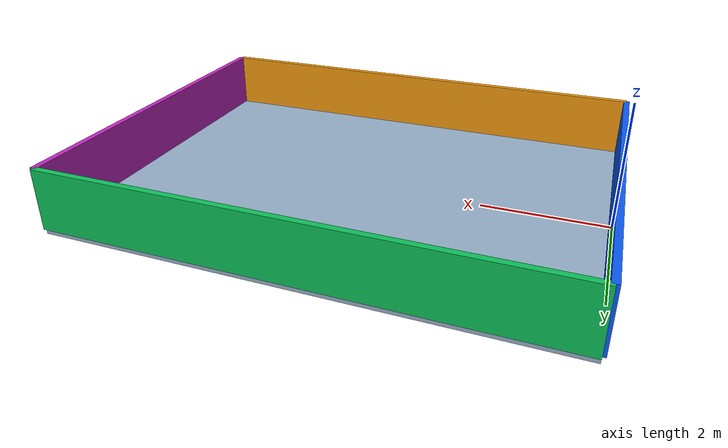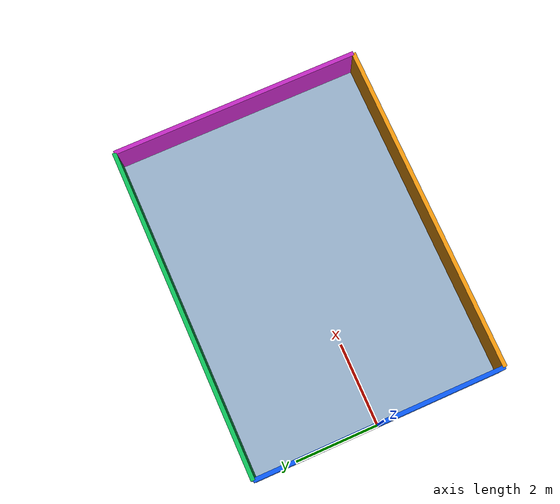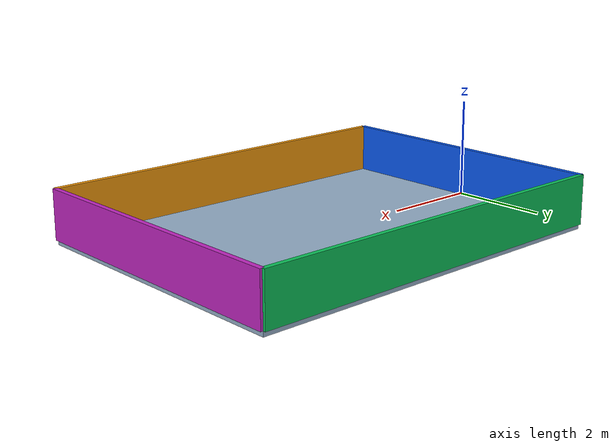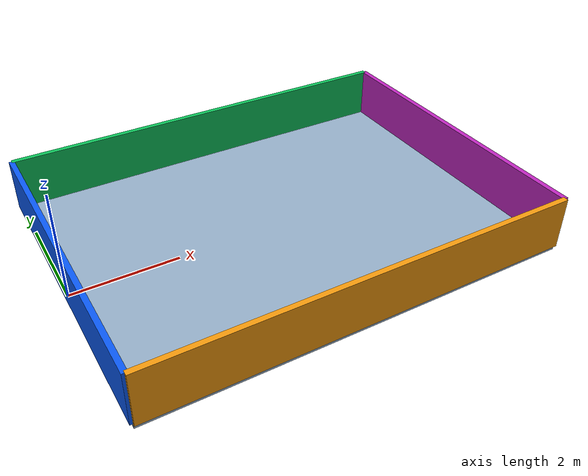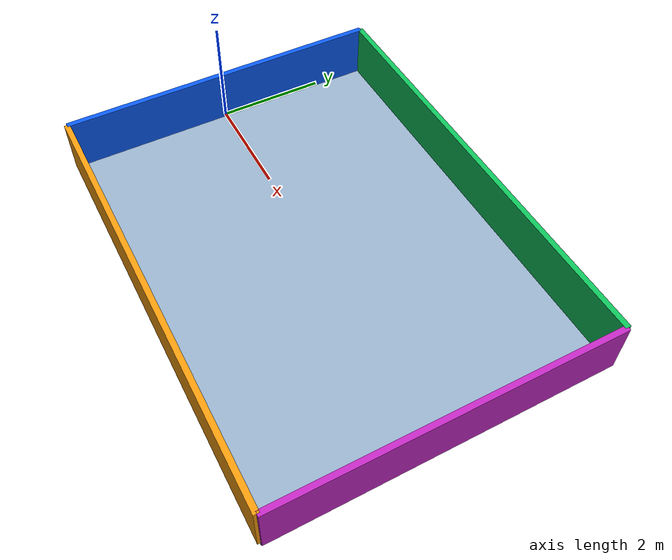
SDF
<?xml version="1.0"?>
<sdf version="1.9">
  <world name="traymover_detour">
    <gravity>0 0 -9.81</gravity>
    <physics name="default_physics" type="ode"><max_step_size>0.001</max_step_size><real_time_factor>1</real_time_factor></physics>
    <plugin name="gz::sim::systems::Physics" filename="gz-sim-physics-system"/>
    <plugin name="gz::sim::systems::UserCommands" filename="gz-sim-user-commands-system"/>
    <plugin name="gz::sim::systems::SceneBroadcaster" filename="gz-sim-scene-broadcaster-system"/>
    <plugin name="gz::sim::systems::Sensors" filename="gz-sim-sensors-system">
      <render_engine>ogre2</render_engine>
    </plugin>
    <scene><ambient>0.65 0.65 0.65 1</ambient><background>0.88 0.92 0.98 1</background></scene>

    <!-- Start Gazebo's 3D view above the complete 8 x 6 m demo area. -->
    <gui fullscreen="false">
      <plugin name="3D View" filename="GzScene3D">
        <gz-gui>
          <title>3D View</title>
          <property type="bool" key="showTitleBar">0</property>
          <property type="string" key="state">docked</property>
        </gz-gui>
        <engine>ogre2</engine>
        <scene>scene</scene>
        <ambient_light>0.8 0.8 0.8</ambient_light>
        <background_color>0.88 0.92 0.98</background_color>
        <camera_pose>4 0 9 0 1.5708 0</camera_pose>
      </plugin>
    </gui>

    <light type="directional" name="sun">
      <pose>4 -4 10 0.35 0.2 0</pose>
      <cast_shadows>true</cast_shadows>
      <diffuse>1 1 1 1</diffuse>
      <specular>0.25 0.25 0.25 1</specular>
    </light>

    <model name="floor">
      <static>true</static><link name="link">
        <collision name="collision"><geometry><box><size>8 6 0.1</size></box></geometry></collision>
        <visual name="visual"><geometry><box><size>8 6 0.1</size></box></geometry><material><ambient>0.42 0.50 0.58 1</ambient><diffuse>0.58 0.68 0.78 1</diffuse><specular>0.15 0.15 0.15 1</specular></material></visual>
      </link>
      <pose>4 0 -0.05 0 0 0</pose>
    </model>

    <!-- Bounds are x=[0,8], y=[-3,3]. -->
    <model name="wall_west"><static>true</static><pose>0 -0.0 0.5 0 0 0</pose><link name="link"><collision name="c"><geometry><box><size>0.1 6 1</size></box></geometry></collision><visual name="v"><geometry><box><size>0.1 6 1</size></box></geometry><material><ambient>0.02 0.18 0.65 1</ambient><diffuse>0.04 0.35 0.95 1</diffuse></material></visual></link></model>
    <model name="wall_east"><static>true</static><pose>8 0 0.5 0 0 0</pose><link name="link"><collision name="c"><geometry><box><size>0.1 6 1</size></box></geometry></collision><visual name="v"><geometry><box><size>0.1 6 1</size></box></geometry><material><ambient>0.45 0.08 0.55 1</ambient><diffuse>0.75 0.15 0.75 1</diffuse></material></visual></link></model>
    <model name="wall_north"><static>true</static><pose>4 3 0.5 0 0 0</pose><link name="link"><collision name="c"><geometry><box><size>8 0.1 1</size></box></geometry></collision><visual name="v"><geometry><box><size>8 0.1 1</size></box></geometry><material><ambient>0.02 0.45 0.25 1</ambient><diffuse>0.05 0.75 0.35 1</diffuse></material></visual></link></model>
    <model name="wall_south"><static>true</static><pose>4 -3 0.5 0 0 0</pose><link name="link"><collision name="c"><geometry><box><size>8 0.1 1</size></box></geometry></collision><visual name="v"><geometry><box><size>8 0.1 1</size></box></geometry><material><ambient>0.65 0.35 0.02 1</ambient><diffuse>0.95 0.60 0.05 1</diffuse></material></visual></link></model>

  </world>
</sdf>
